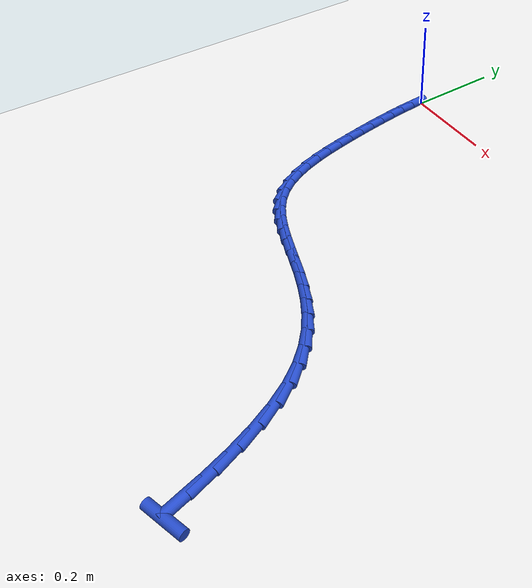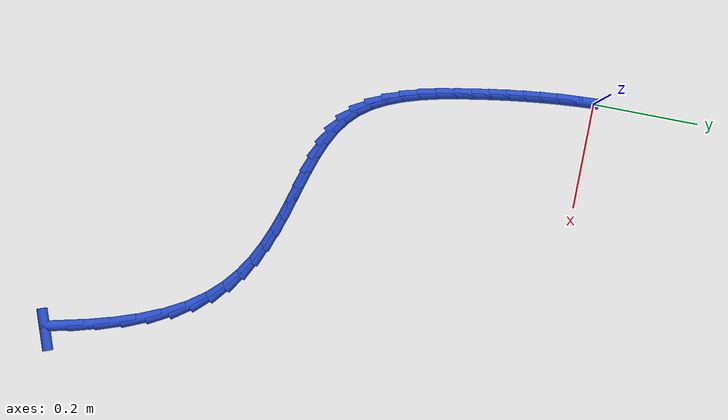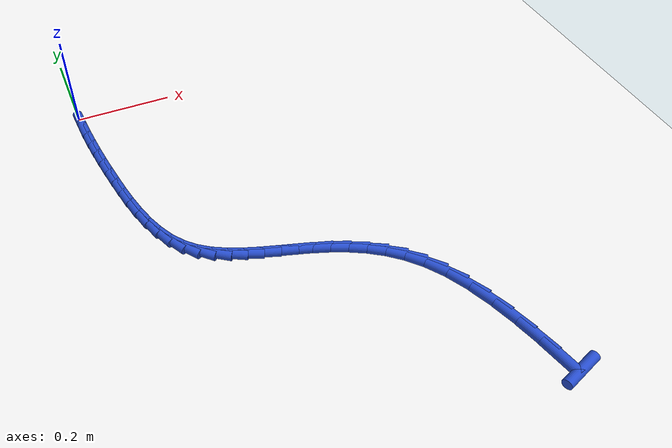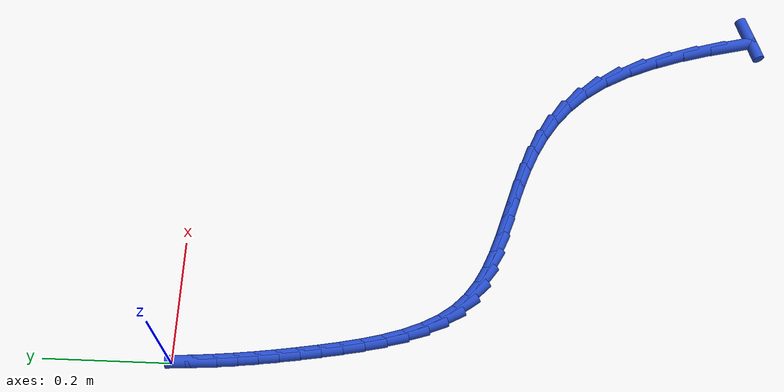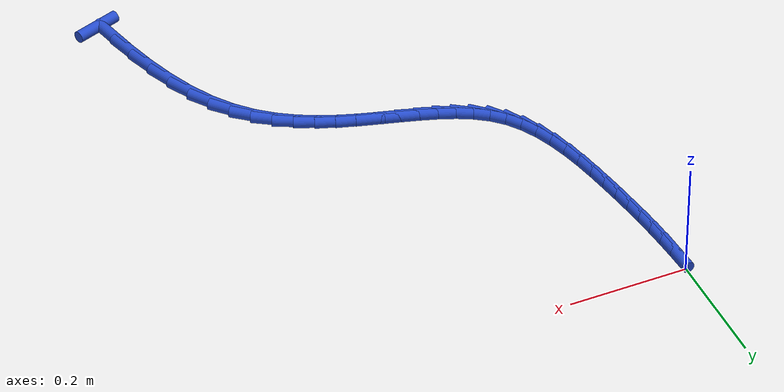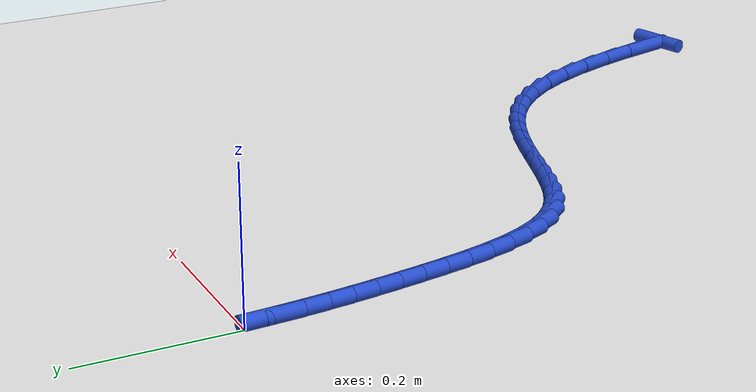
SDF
<sdf version="1.6">
 <world name="default">
  <model name="ground_plane">
   <static>1</static>
   <link name="link">
    <collision name="collision">
     <geometry><plane><normal>0 0 1</normal><size>100 100</size></plane></geometry>
     <surface><friction><ode><mu>100</mu><mu2>50</mu2></ode></friction></surface>
    </collision>
    <visual name="visual">
     <cast_shadows>0</cast_shadows>
     <geometry><plane><normal>0 0 1</normal><size>100 100</size></plane></geometry>
     <material>
      <script><uri>file://media/materials/scripts/gazebo.material</uri><name>Gazebo/WhiteGlow</name></script>
     </material>
    </visual>
   </link>
  </model>
  <model name="line">
   <link name="link_230">
    <pose>0.6125239573438497 -0.9298629868973514 0.01 0 1.57 0.33482407157700683</pose>
    <collision name="collision">
     <geometry><cylinder><radius>0.01</radius><length>0.08</length></cylinder></geometry>
    </collision>
    <visual name="visual">
     <material>
      <script><name>Gazebo/Blue</name><uri>file://media/materials/scripts/gazebo.material</uri></script>
     </material>
     <geometry><cylinder><radius>0.01</radius><length>0.08</length></cylinder></geometry>
    </visual>
   </link>
   <link name="link_246">
    <pose>0.598524411396961 -0.8980764088922162 0.01 0 1.57 -1.3372103179107973</pose>
    <collision name="collision">
     <geometry><cylinder><radius>0.01</radius><length>0.08</length></cylinder></geometry>
    </collision>
    <visual name="visual">
     <material>
      <script><name>Gazebo/Blue</name><uri>file://media/materials/scripts/gazebo.material</uri></script>
     </material>
     <geometry><cylinder><radius>0.01</radius><length>0.08</length></cylinder></geometry>
    </visual>
   </link>
   <link name="link_247">
    <pose>0.5870721245968612 -0.8499432305667503 0.01 0 1.57 -1.2908683167286317</pose>
    <collision name="collision">
     <geometry><cylinder><radius>0.01</radius><length>0.08</length></cylinder></geometry>
    </collision>
    <visual name="visual">
     <material>
      <script><name>Gazebo/Blue</name><uri>file://media/materials/scripts/gazebo.material</uri></script>
     </material>
     <geometry><cylinder><radius>0.01</radius><length>0.08</length></cylinder></geometry>
    </visual>
   </link>
   <link name="link_248">
    <pose>0.5733024260217344 -0.8020446924420271 0.01 0 1.57 -1.2346021527356759</pose>
    <collision name="collision">
     <geometry><cylinder><radius>0.01</radius><length>0.08</length></cylinder></geometry>
    </collision>
    <visual name="visual">
     <material>
      <script><name>Gazebo/Blue</name><uri>file://media/materials/scripts/gazebo.material</uri></script>
     </material>
     <geometry><cylinder><radius>0.01</radius><length>0.08</length></cylinder></geometry>
    </visual>
   </link>
   <link name="link_249">
    <pose>0.557140608566444 -0.7557967920701767 0.01 0 1.57 -1.1635125377120015</pose>
    <collision name="collision">
     <geometry><cylinder><radius>0.01</radius><length>0.08</length></cylinder></geometry>
    </collision>
    <visual name="visual">
     <material>
      <script><name>Gazebo/Blue</name><uri>file://media/materials/scripts/gazebo.material</uri></script>
     </material>
     <geometry><cylinder><radius>0.01</radius><length>0.08</length></cylinder></geometry>
    </visual>
   </link>
   <link name="link_250">
    <pose>0.5385119651258526 -0.7126155270033291 0.01 0 1.57 -1.070219026428982</pose>
    <collision name="collision">
     <geometry><cylinder><radius>0.01</radius><length>0.08</length></cylinder></geometry>
    </collision>
    <visual name="visual">
     <material>
      <script><name>Gazebo/Blue</name><uri>file://media/materials/scripts/gazebo.material</uri></script>
     </material>
     <geometry><cylinder><radius>0.01</radius><length>0.08</length></cylinder></geometry>
    </visual>
   </link>
   <link name="link_251">
    <pose>0.5173417885948237 -0.6739168947936146 0.01 0 1.57 -0.9484289798630073</pose>
    <collision name="collision">
     <geometry><cylinder><radius>0.01</radius><length>0.08</length></cylinder></geometry>
    </collision>
    <visual name="visual">
     <material>
      <script><name>Gazebo/Blue</name><uri>file://media/materials/scripts/gazebo.material</uri></script>
     </material>
     <geometry><cylinder><radius>0.01</radius><length>0.08</length></cylinder></geometry>
    </visual>
   </link>
   <link name="link_252">
    <pose>0.4936147719387094 -0.6408473735255737 0.01 0 1.57 -0.8167529220728997</pose>
    <collision name="collision">
     <geometry><cylinder><radius>0.01</radius><length>0.08</length></cylinder></geometry>
    </collision>
    <visual name="visual">
     <material>
      <script><name>Gazebo/Blue</name><uri>file://media/materials/scripts/gazebo.material</uri></script>
     </material>
     <geometry><cylinder><radius>0.01</radius><length>0.08</length></cylinder></geometry>
    </visual>
   </link>
   <link name="link_253">
    <pose>0.46762056407555164 -0.6131697465283668 0.01 0 1.57 -0.6891506984446176</pose>
    <collision name="collision">
     <geometry><cylinder><radius>0.01</radius><length>0.08</length></cylinder></geometry>
    </collision>
    <visual name="visual">
     <material>
      <script><name>Gazebo/Blue</name><uri>file://media/materials/scripts/gazebo.material</uri></script>
     </material>
     <geometry><cylinder><radius>0.01</radius><length>0.08</length></cylinder></geometry>
    </visual>
   </link>
   <link name="link_254">
    <pose>0.4397464092999914 -0.5902039718327372 0.01 0 1.57 -0.5726735145283566</pose>
    <collision name="collision">
     <geometry><cylinder><radius>0.01</radius><length>0.08</length></cylinder></geometry>
    </collision>
    <visual name="visual">
     <material>
      <script><name>Gazebo/Blue</name><uri>file://media/materials/scripts/gazebo.material</uri></script>
     </material>
     <geometry><cylinder><radius>0.01</radius><length>0.08</length></cylinder></geometry>
    </visual>
   </link>
   <link name="link_255">
    <pose>0.41037959571828764 -0.5712698086803749 0.01 0 1.57 -0.4727082022585734</pose>
    <collision name="collision">
     <geometry><cylinder><radius>0.01</radius><length>0.08</length></cylinder></geometry>
    </collision>
    <visual name="visual">
     <material>
      <script><name>Gazebo/Blue</name><uri>file://media/materials/scripts/gazebo.material</uri></script>
     </material>
     <geometry><cylinder><radius>0.01</radius><length>0.08</length></cylinder></geometry>
    </visual>
   </link>
   <link name="link_256">
    <pose>0.37990741143669926 -0.5556870163129703 0.01 0 1.57 -0.3924864505570559</pose>
    <collision name="collision">
     <geometry><cylinder><radius>0.01</radius><length>0.08</length></cylinder></geometry>
    </collision>
    <visual name="visual">
     <material>
      <script><name>Gazebo/Blue</name><uri>file://media/materials/scripts/gazebo.material</uri></script>
     </material>
     <geometry><cylinder><radius>0.01</radius><length>0.08</length></cylinder></geometry>
    </visual>
   </link>
   <link name="link_257">
    <pose>0.3487171445614853 -0.5427753539722137 0.01 0 1.57 -0.33351727799252956</pose>
    <collision name="collision">
     <geometry><cylinder><radius>0.01</radius><length>0.08</length></cylinder></geometry>
    </collision>
    <visual name="visual">
     <material>
      <script><name>Gazebo/Blue</name><uri>file://media/materials/scripts/gazebo.material</uri></script>
     </material>
     <geometry><cylinder><radius>0.01</radius><length>0.08</length></cylinder></geometry>
    </visual>
   </link>
   <link name="link_258">
    <pose>0.3171960831989043 -0.5318545808997946 0.01 0 1.57 -0.29642811146052195</pose>
    <collision name="collision">
     <geometry><cylinder><radius>0.01</radius><length>0.08</length></cylinder></geometry>
    </collision>
    <visual name="visual">
     <material>
      <script><name>Gazebo/Blue</name><uri>file://media/materials/scripts/gazebo.material</uri></script>
     </material>
     <geometry><cylinder><radius>0.01</radius><length>0.08</length></cylinder></geometry>
    </visual>
   </link>
   <link name="link_259">
    <pose>0.28573151545521563 -0.5222444563374039 0.01 0 1.57 -0.2817723311251526</pose>
    <collision name="collision">
     <geometry><cylinder><radius>0.01</radius><length>0.08</length></cylinder></geometry>
    </collision>
    <visual name="visual">
     <material>
      <script><name>Gazebo/Blue</name><uri>file://media/materials/scripts/gazebo.material</uri></script>
     </material>
     <geometry><cylinder><radius>0.01</radius><length>0.08</length></cylinder></geometry>
    </visual>
   </link>
   <link name="link_260">
    <pose>0.254710729436678 -0.5132647395267315 0.01 0 1.57 -0.2906249946974193</pose>
    <collision name="collision">
     <geometry><cylinder><radius>0.01</radius><length>0.08</length></cylinder></geometry>
    </collision>
    <visual name="visual">
     <material>
      <script><name>Gazebo/Blue</name><uri>file://media/materials/scripts/gazebo.material</uri></script>
     </material>
     <geometry><cylinder><radius>0.01</radius><length>0.08</length></cylinder></geometry>
    </visual>
   </link>
   <link name="link_261">
    <pose>0.22452101324954948 -0.504235189709467 0.01 0 1.57 -0.3249314760452665</pose>
    <collision name="collision">
     <geometry><cylinder><radius>0.01</radius><length>0.08</length></cylinder></geometry>
    </collision>
    <visual name="visual">
     <material>
      <script><name>Gazebo/Blue</name><uri>file://media/materials/scripts/gazebo.material</uri></script>
     </material>
     <geometry><cylinder><radius>0.01</radius><length>0.08</length></cylinder></geometry>
    </visual>
   </link>
   <link name="link_262">
    <pose>0.195549655000091 -0.49447556612730187 0.01 0 1.57 -0.3875319390674163</pose>
    <collision name="collision">
     <geometry><cylinder><radius>0.01</radius><length>0.08</length></cylinder></geometry>
    </collision>
    <visual name="visual">
     <material>
      <script><name>Gazebo/Blue</name><uri>file://media/materials/scripts/gazebo.material</uri></script>
     </material>
     <geometry><cylinder><radius>0.01</radius><length>0.08</length></cylinder></geometry>
    </visual>
   </link>
   <link name="link_263">
    <pose>0.1681839427945604 -0.48330562802192534 0.01 0 1.57 -0.4815847506126148</pose>
    <collision name="collision">
     <geometry><cylinder><radius>0.01</radius><length>0.08</length></cylinder></geometry>
    </collision>
    <visual name="visual">
     <material>
      <script><name>Gazebo/Blue</name><uri>file://media/materials/scripts/gazebo.material</uri></script>
     </material>
     <geometry><cylinder><radius>0.01</radius><length>0.08</length></cylinder></geometry>
    </visual>
   </link>
   <link name="link_264">
    <pose>0.14281116473921668 -0.47004513463502784 0.01 0 1.57 -0.6088700367327006</pose>
    <collision name="collision">
     <geometry><cylinder><radius>0.01</radius><length>0.08</length></cylinder></geometry>
    </collision>
    <visual name="visual">
     <material>
      <script><name>Gazebo/Blue</name><uri>file://media/materials/scripts/gazebo.material</uri></script>
     </material>
     <geometry><cylinder><radius>0.01</radius><length>0.08</length></cylinder></geometry>
    </visual>
   </link>
   <link name="link_265">
    <pose>0.11981860894031876 -0.45401384520829935 0.01 0 1.57 -0.7666955250715903</pose>
    <collision name="collision">
     <geometry><cylinder><radius>0.01</radius><length>0.08</length></cylinder></geometry>
    </collision>
    <visual name="visual">
     <material>
      <script><name>Gazebo/Blue</name><uri>file://media/materials/scripts/gazebo.material</uri></script>
     </material>
     <geometry><cylinder><radius>0.01</radius><length>0.08</length></cylinder></geometry>
    </visual>
   </link>
   <link name="link_266">
    <pose>0.09959356350412564 -0.43453151898343056 0.01 0 1.57 -0.9373663090647555</pose>
    <collision name="collision">
     <geometry><cylinder><radius>0.01</radius><length>0.08</length></cylinder></geometry>
    </collision>
    <visual name="visual">
     <material>
      <script><name>Gazebo/Blue</name><uri>file://media/materials/scripts/gazebo.material</uri></script>
     </material>
     <geometry><cylinder><radius>0.01</radius><length>0.08</length></cylinder></geometry>
    </visual>
   </link>
   <link name="link_267">
    <pose>0.08240776882624813 -0.4111297886232608 0.01 0 1.57 -1.079261749625526</pose>
    <collision name="collision">
     <geometry><cylinder><radius>0.01</radius><length>0.08</length></cylinder></geometry>
    </collision>
    <visual name="visual">
     <material>
      <script><name>Gazebo/Blue</name><uri>file://media/materials/scripts/gazebo.material</uri></script>
     </material>
     <geometry><cylinder><radius>0.01</radius><length>0.08</length></cylinder></geometry>
    </visual>
   </link>
   <link name="link_268">
    <pose>0.06802702116715151 -0.38426800845835263 0.01 0 1.57 -1.1872396285696056</pose>
    <collision name="collision">
     <geometry><cylinder><radius>0.01</radius><length>0.08</length></cylinder></geometry>
    </collision>
    <visual name="visual">
     <material>
      <script><name>Gazebo/Blue</name><uri>file://media/materials/scripts/gazebo.material</uri></script>
     </material>
     <geometry><cylinder><radius>0.01</radius><length>0.08</length></cylinder></geometry>
    </visual>
   </link>
   <link name="link_269">
    <pose>0.056078676421180675 -0.35465938323162705 0.01 0 1.57 -1.2679004195499923</pose>
    <collision name="collision">
     <geometry><cylinder><radius>0.01</radius><length>0.08</length></cylinder></geometry>
    </collision>
    <visual name="visual">
     <material>
      <script><name>Gazebo/Blue</name><uri>file://media/materials/scripts/gazebo.material</uri></script>
     </material>
     <geometry><cylinder><radius>0.01</radius><length>0.08</length></cylinder></geometry>
    </visual>
   </link>
   <link name="link_270">
    <pose>0.04619008701708368 -0.32301712404067645 0.01 0 1.57 -1.3269369281078969</pose>
    <collision name="collision">
     <geometry><cylinder><radius>0.01</radius><length>0.08</length></cylinder></geometry>
    </collision>
    <visual name="visual">
     <material>
      <script><name>Gazebo/Blue</name><uri>file://media/materials/scripts/gazebo.material</uri></script>
     </material>
     <geometry><cylinder><radius>0.01</radius><length>0.08</length></cylinder></geometry>
    </visual>
   </link>
   <link name="link_271">
    <pose>0.03798860538360939 -0.29005444198309566 0.01 0 1.57 -1.3684492753007125</pose>
    <collision name="collision">
     <geometry><cylinder><radius>0.01</radius><length>0.08</length></cylinder></geometry>
    </collision>
    <visual name="visual">
     <material>
      <script><name>Gazebo/Blue</name><uri>file://media/materials/scripts/gazebo.material</uri></script>
     </material>
     <geometry><cylinder><radius>0.01</radius><length>0.08</length></cylinder></geometry>
    </visual>
   </link>
   <link name="link_272">
    <pose>0.0311015839495058 -0.2564845481564772 0.01 0 1.57 -1.3949704875617084</pose>
    <collision name="collision">
     <geometry><cylinder><radius>0.01</radius><length>0.08</length></cylinder></geometry>
    </collision>
    <visual name="visual">
     <material>
      <script><name>Gazebo/Blue</name><uri>file://media/materials/scripts/gazebo.material</uri></script>
     </material>
     <geometry><cylinder><radius>0.01</radius><length>0.08</length></cylinder></geometry>
    </visual>
   </link>
   <link name="link_273">
    <pose>0.02515637514352122 -0.22302065365841425 0.01 0 1.57 -1.410067717338645</pose>
    <collision name="collision">
     <geometry><cylinder><radius>0.01</radius><length>0.08</length></cylinder></geometry>
    </collision>
    <visual name="visual">
     <material>
      <script><name>Gazebo/Blue</name><uri>file://media/materials/scripts/gazebo.material</uri></script>
     </material>
     <geometry><cylinder><radius>0.01</radius><length>0.08</length></cylinder></geometry>
    </visual>
   </link>
   <link name="link_274">
    <pose>0.019840307664471986 -0.19023115470632 0.01 0 1.57 -1.4241675865680248</pose>
    <collision name="collision">
     <geometry><cylinder><radius>0.01</radius><length>0.08</length></cylinder></geometry>
    </collision>
    <visual name="visual">
     <material>
      <script><name>Gazebo/Blue</name><uri>file://media/materials/scripts/gazebo.material</uri></script>
     </material>
     <geometry><cylinder><radius>0.01</radius><length>0.08</length></cylinder></geometry>
    </visual>
   </link>
   <link name="link_275">
    <pose>0.015091709396122517 -0.15807840087862451 0.01 0 1.57 -1.4398295626598594</pose>
    <collision name="collision">
     <geometry><cylinder><radius>0.01</radius><length>0.08</length></cylinder></geometry>
    </collision>
    <visual name="visual">
     <material>
      <script><name>Gazebo/Blue</name><uri>file://media/materials/scripts/gazebo.material</uri></script>
     </material>
     <geometry><cylinder><radius>0.01</radius><length>0.08</length></cylinder></geometry>
    </visual>
   </link>
   <link name="link_276">
    <pose>0.010914558609650876 -0.1263662265113747 0.01 0 1.57 -1.456834640552256</pose>
    <collision name="collision">
     <geometry><cylinder><radius>0.01</radius><length>0.08</length></cylinder></geometry>
    </collision>
    <visual name="visual">
     <material>
      <script><name>Gazebo/Blue</name><uri>file://media/materials/scripts/gazebo.material</uri></script>
     </material>
     <geometry><cylinder><radius>0.01</radius><length>0.08</length></cylinder></geometry>
    </visual>
   </link>
   <link name="link_277">
    <pose>0.00731283379092993 -0.09489846542222896 0.01 0 1.57 -1.4748989190197535</pose>
    <collision name="collision">
     <geometry><cylinder><radius>0.01</radius><length>0.08</length></cylinder></geometry>
    </collision>
    <visual name="visual">
     <material>
      <script><name>Gazebo/Blue</name><uri>file://media/materials/scripts/gazebo.material</uri></script>
     </material>
     <geometry><cylinder><radius>0.01</radius><length>0.08</length></cylinder></geometry>
    </visual>
   </link>
   <link name="link_278">
    <pose>0.004290513425832566 -0.06347895142884583 0.01 0 1.57 -1.4936883206627924</pose>
    <collision name="collision">
     <geometry><cylinder><radius>0.01</radius><length>0.08</length></cylinder></geometry>
    </collision>
    <visual name="visual">
     <material>
      <script><name>Gazebo/Blue</name><uri>file://media/materials/scripts/gazebo.material</uri></script>
     </material>
     <geometry><cylinder><radius>0.01</radius><length>0.08</length></cylinder></geometry>
    </visual>
   </link>
   <link name="link_279">
    <pose>0.001851576000231584 -0.031911518348882784 0.01 0 1.57 -1.512839123237018</pose>
    <collision name="collision">
     <geometry><cylinder><radius>0.01</radius><length>0.08</length></cylinder></geometry>
    </collision>
    <visual name="visual">
     <material>
      <script><name>Gazebo/Blue</name><uri>file://media/materials/scripts/gazebo.material</uri></script>
     </material>
     <geometry><cylinder><radius>0.01</radius><length>0.08</length></cylinder></geometry>
    </visual>
   </link>
  </model>
 </world>
</sdf>
